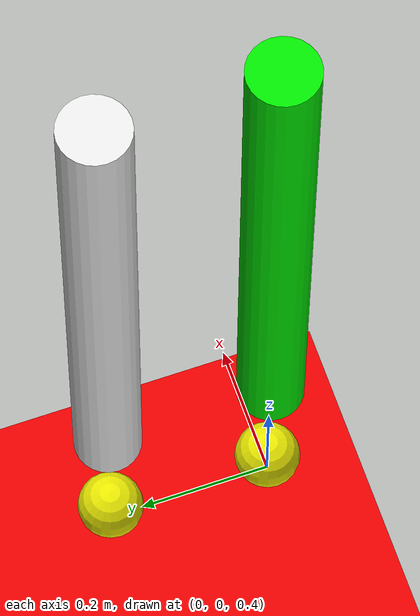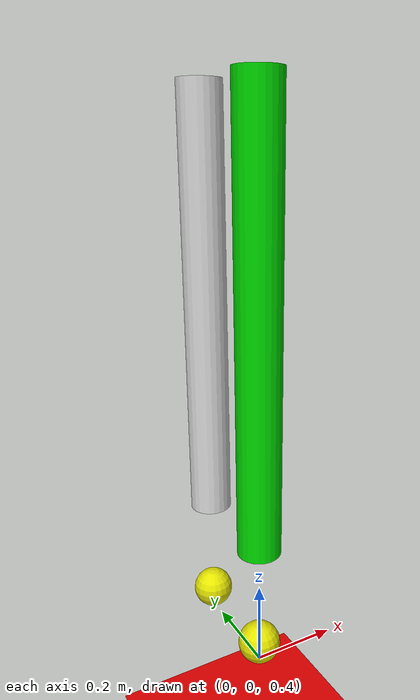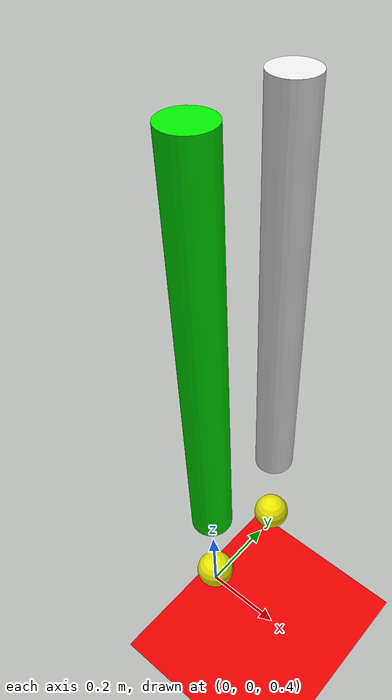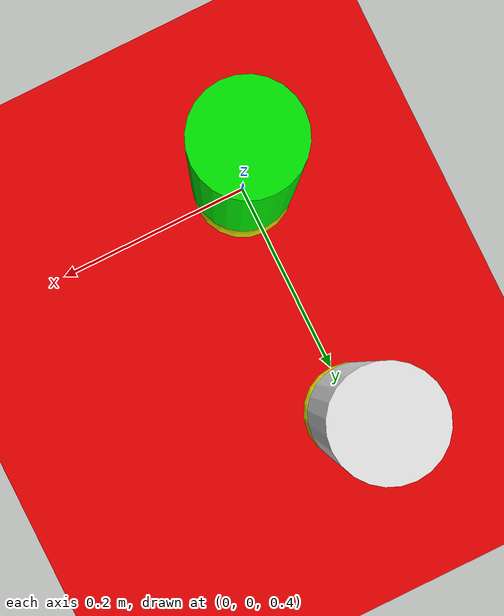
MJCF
<mujoco>

	<visual>
			<headlight ambient="0.25 0.25 0.25"/>
	</visual>

	<option timestep="0.001" integrator="RK4" gravity="0 0 0">
		<flag sensornoise="enable" contact="enable" energy="enable"/>
	</option>

	<worldbody>
		<geom type="plane" size="50 5 0.1" rgba=".9 0 0 1"/>

		<body name="leg1" pos="0 0 1.2" euler="0 0 0">
			<joint name="x" type="slide" pos="0 0 0.5" axis = "1 0 0" />
			<joint name="z" type="slide" pos="0 0 0.5" axis = "0 0 1" />
			<joint name="pin" type="hinge" pos="0 0 0.5" axis="0 -1 0" />
			<geom type="cylinder" size=".05 .5" rgba="0 .9 0 1" mass="1"/>

			<body name="foot1" pos="0 0 -0.75">
				<joint name="knee1" type="slide" pos="0 0 0.25" axis = "0 0 -1" />
				<geom type="sphere" size=".05" rgba=".9 .9 0 1" mass="0.1"/>
			</body>

			<body name="leg2" pos="0 0.25 0" euler="0 0 0">
				<joint name="hip" type="hinge" pos="0 0 0.5" axis = "0 -1 0" />
				<geom type="cylinder" size=".05 .5" rgba=".9 .9 .9 1" mass="1"/>

				<body name="foot2" pos="0 0 -0.75">
					<joint name="knee2" type="slide" pos="0 0 0.25" axis = "0 0 -1" />
					<geom type="sphere" size=".05" rgba=".9 .9 0 1" mass="0.1"/>
				</body>
			</body>
		</body>

	</worldbody>

	<actuator>
		<position name="position_servo_hip" joint="hip" kp="5"/>
		<velocity name="velocity_servo_hip" joint="hip" kv="1"/>

		<position name="position_servo_knee1" joint="knee1" kp="1000"/>
		<velocity name="velocity_servo_knee1" joint="knee1" kv="100"/>

		<position name="position_servo_knee2" joint="knee2" kp="1000"/>
		<velocity name="velocity_servo_knee2" joint="knee2" kv="100"/>
	</actuator>

</mujoco>
